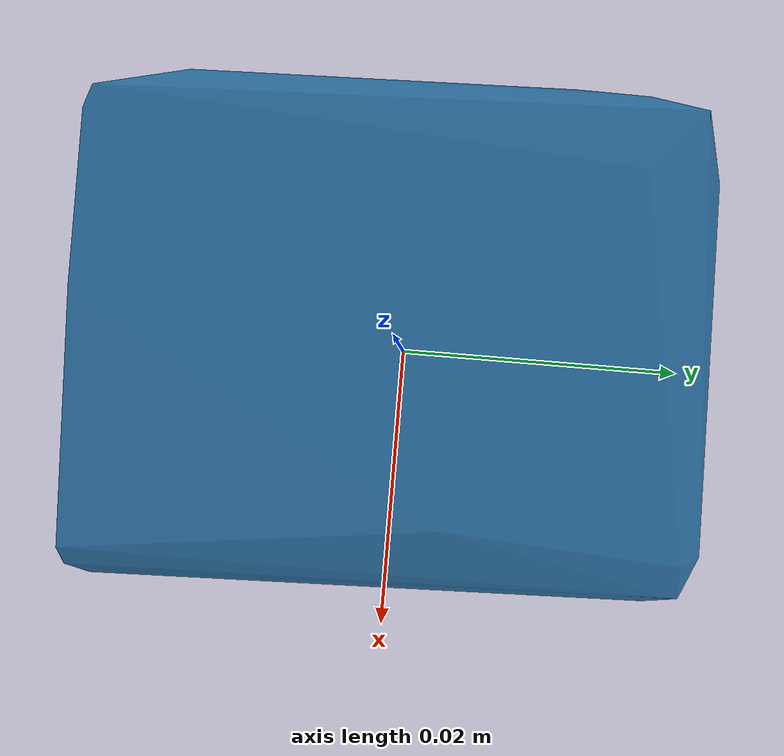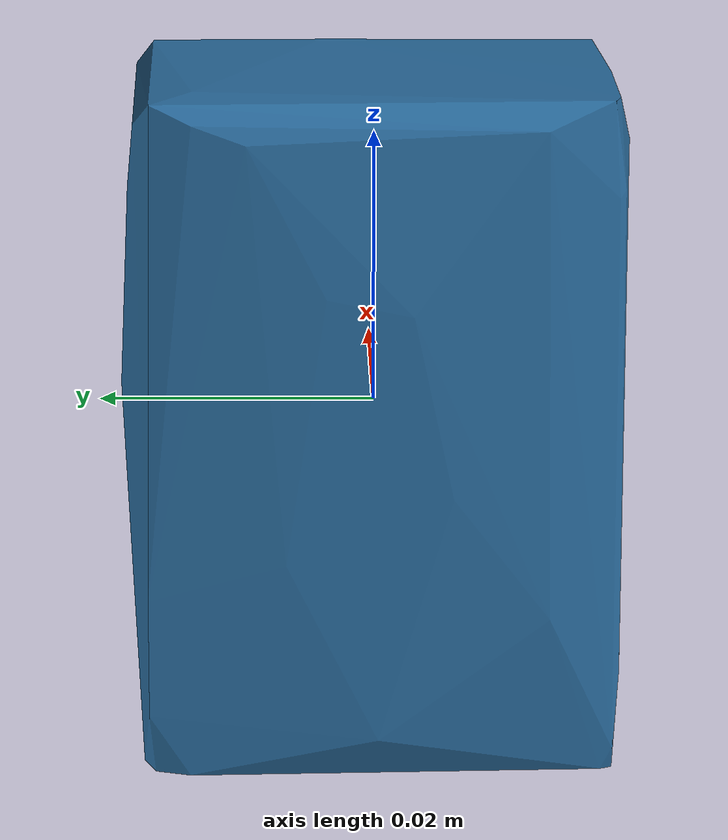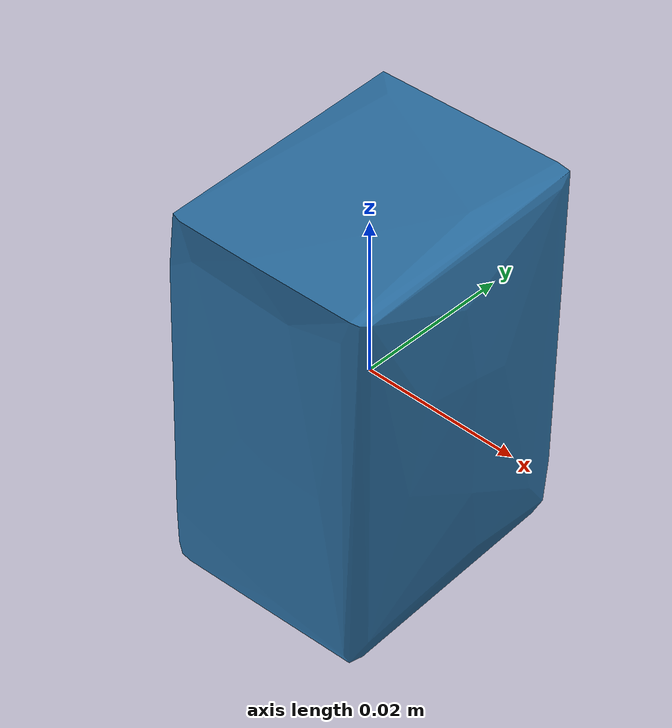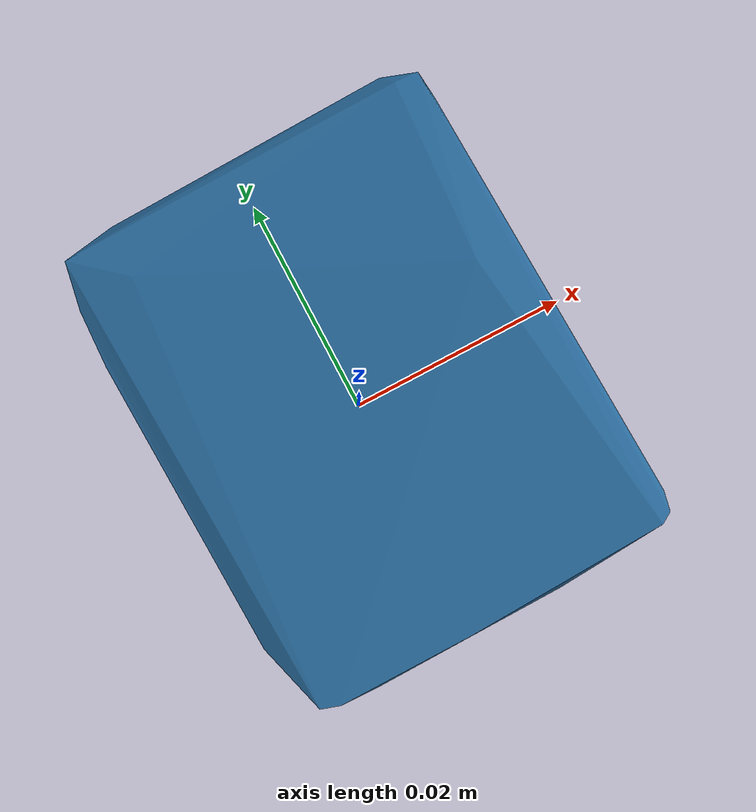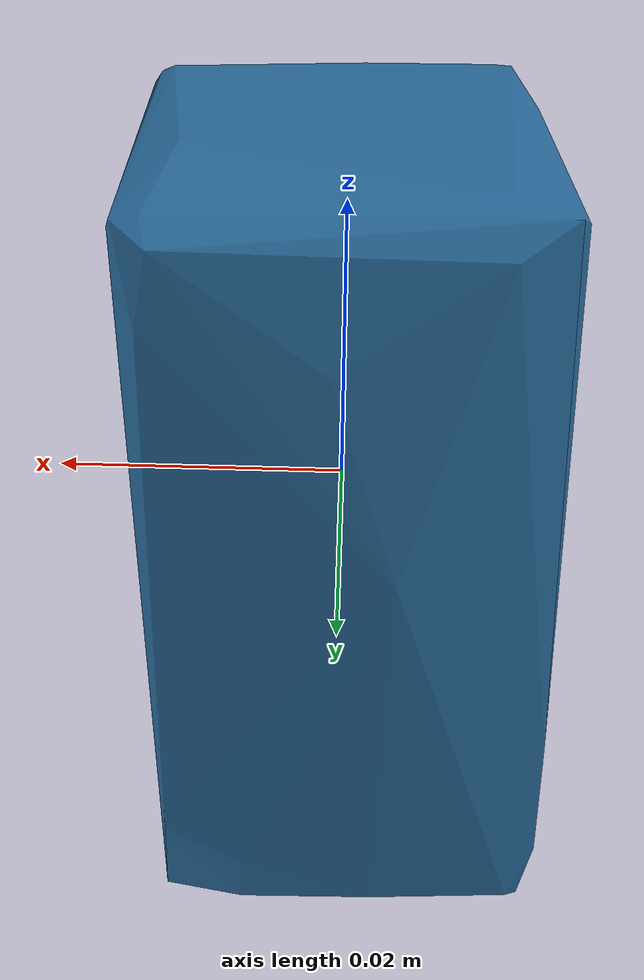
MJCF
<mujoco model="BlueSaltCube">
  <asset>
    <mesh file="meshes/BlueSaltCube/BlueSaltCube_0.stl" name="BlueSaltCube_0" scale="0.8 0.8 0.5"/>
  </asset>
  <worldbody>
    <body>
      <body name="collision">
        <geom condim="4" density="100" friction="1.5 0.3 0.1" group="1" mesh="BlueSaltCube_0" pos="0 0 0" rgba="0.165 0.43 0.63 1" solimp="0.998 0.998 0.001" solref="0.002 1" type="mesh"/>
      </body>
      <body name="visual">
        <geom conaffinity="0" contype="0" group="0" mass="0.0001" mesh="BlueSaltCube_0" pos="0 0 0" rgba="0 1 0 1" type="mesh"/>
      </body>
      <site name="bottom_site" pos="0 0 -0.06" rgba="0 0 0 0" size="0.005"/>
      <site name="top_site" pos="0 0 0.04" rgba="0 0 0 0" size="0.005"/>
      <site name="horizontal_radius_site" pos="0.025 0.025 0" rgba="0 0 0 0" size="0.005"/>
    </body>
  </worldbody>
</mujoco>
